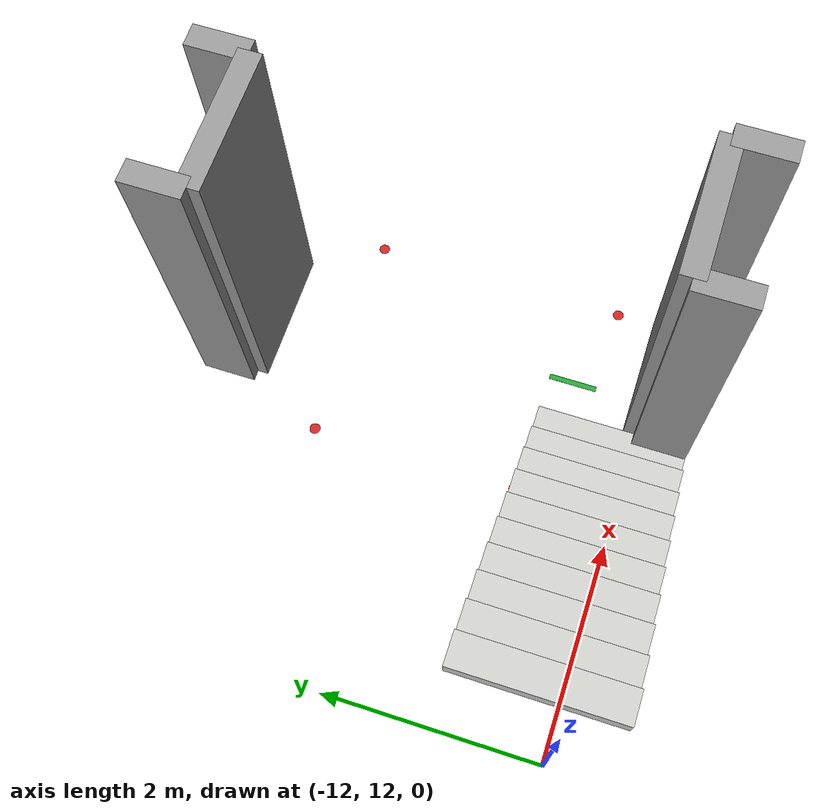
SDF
<sdf version="1.6">
 <world name="square_world">
  <model name="wall33">
   <static>1</static>
   <pose>-8.09 15.85 1.6 0 0 -1.5708</pose>
   <link name="wall_link">
    <inertial><mass>10000</mass></inertial>
    <collision name="wall_collision">
     <geometry><box><size>0.5 0.2 3.2</size></box></geometry>
     <surface><contact><collide_bitmask>2</collide_bitmask></contact></surface>
    </collision>
    <visual name="wall_visual">
     <geometry><box><size>0.5 0.2 3.2</size></box></geometry>
     <material><script><name>Gazebo/Grey</name><uri>__default__</uri></script></material>
    </visual>
   </link>
  </model>
  <model name="wall34">
   <static>1</static>
   <pose>-9.33 15.85 1.6 0 0 -1.5708</pose>
   <link name="wall_link">
    <inertial><mass>10000</mass></inertial>
    <collision name="wall_collision">
     <geometry><box><size>0.5 0.2 3.2</size></box></geometry>
     <surface><contact><collide_bitmask>2</collide_bitmask></contact></surface>
    </collision>
    <visual name="wall_visual">
     <geometry><box><size>0.5 0.2 3.2</size></box></geometry>
     <material><script><name>Gazebo/Grey</name><uri>__default__</uri></script></material>
    </visual>
   </link>
  </model>
  <model name="wall35">
   <static>1</static>
   <pose>-8.71 15.6 1.6 0 -0 0</pose>
   <link name="wall_link">
    <inertial><mass>10000</mass></inertial>
    <collision name="wall_collision">
     <geometry><box><size>1.24 0.2 3.2</size></box></geometry>
     <surface><contact><collide_bitmask>2</collide_bitmask></contact></surface>
    </collision>
    <visual name="wall_visual">
     <geometry><box><size>1.24 0.2 3.2</size></box></geometry>
     <material><script><name>Gazebo/Grey</name><uri>__default__</uri></script></material>
    </visual>
   </link>
  </model>
  <model name="wall42">
   <static>1</static>
   <pose>-7.72 11.7775 1.6 0 0 -1.5708</pose>
   <link name="wall_link">
    <inertial><mass>10000</mass></inertial>
    <collision name="wall_collision">
     <geometry><box><size>0.505 0.2 3.2</size></box></geometry>
     <surface><contact><collide_bitmask>2</collide_bitmask></contact></surface>
    </collision>
    <visual name="wall_visual">
     <geometry><box><size>0.505 0.2 3.2</size></box></geometry>
     <material><script><name>Gazebo/Grey</name><uri>__default__</uri></script></material>
    </visual>
   </link>
  </model>
  <model name="wall43">
   <static>1</static>
   <pose>-8.94 11.7775 1.6 0 0 -1.5708</pose>
   <link name="wall_link">
    <inertial><mass>10000</mass></inertial>
    <collision name="wall_collision">
     <geometry><box><size>0.505 0.2 3.2</size></box></geometry>
     <surface><contact><collide_bitmask>2</collide_bitmask></contact></surface>
    </collision>
    <visual name="wall_visual">
     <geometry><box><size>0.505 0.2 3.2</size></box></geometry>
     <material><script><name>Gazebo/Grey</name><uri>__default__</uri></script></material>
    </visual>
   </link>
  </model>
  <model name="wall44">
   <static>1</static>
   <pose>-8.33 12.03 1.6 0 -0 0</pose>
   <link name="wall_link">
    <inertial><mass>10000</mass></inertial>
    <collision name="wall_collision">
     <geometry><box><size>1.22 0.2 3.2</size></box></geometry>
     <surface><contact><collide_bitmask>2</collide_bitmask></contact></surface>
    </collision>
    <visual name="wall_visual">
     <geometry><box><size>1.22 0.2 3.2</size></box></geometry>
     <material><script><name>Gazebo/Grey</name><uri>__default__</uri></script></material>
    </visual>
   </link>
  </model>
  <model name="Stairs">
   <pose>-10.345 12.23 0 0 -0 0</pose>
   <link name="Stairs_1">
    <visual name="Stairs_1_Visual_0">
     <pose>1.2645 0 0.0935 0 0 -1.5708</pose>
     <geometry><box><size>1.41 0.281 0.187</size></box></geometry>
     <material>
      <script><uri>file://media/materials/scripts/gazebo.material</uri><name>Gazebo/CeilingTiled</name></script>
      <ambient>0.760784 0.662745 0.627451 1</ambient>
     </material>
    </visual>
    <collision name="Stairs_1_Collision_0">
     <geometry><box><size>1.41 0.281 0.187</size></box></geometry>
     <pose>1.2645 0 0.0935 0 0 -1.5708</pose>
    </collision>
    <visual name="Stairs_1_Visual_1">
     <pose>0.9835 0 0.2805 0 0 -1.5708</pose>
     <geometry><box><size>1.41 0.281 0.187</size></box></geometry>
     <material>
      <script><uri>file://media/materials/scripts/gazebo.material</uri><name>Gazebo/CeilingTiled</name></script>
      <ambient>0.760784 0.662745 0.627451 1</ambient>
     </material>
    </visual>
    <collision name="Stairs_1_Collision_1">
     <geometry><box><size>1.41 0.281 0.187</size></box></geometry>
     <pose>0.9835 0 0.2805 0 0 -1.5708</pose>
    </collision>
    <visual name="Stairs_1_Visual_2">
     <pose>0.7025 0 0.4675 0 0 -1.5708</pose>
     <geometry><box><size>1.41 0.281 0.187</size></box></geometry>
     <material>
      <script><uri>file://media/materials/scripts/gazebo.material</uri><name>Gazebo/CeilingTiled</name></script>
      <ambient>0.760784 0.662745 0.627451 1</ambient>
     </material>
    </visual>
    <collision name="Stairs_1_Collision_2">
     <geometry><box><size>1.41 0.281 0.187</size></box></geometry>
     <pose>0.7025 0 0.4675 0 0 -1.5708</pose>
    </collision>
    <visual name="Stairs_1_Visual_3">
     <pose>0.4215 0 0.6545 0 0 -1.5708</pose>
     <geometry><box><size>1.41 0.281 0.187</size></box></geometry>
     <material>
      <script><uri>file://media/materials/scripts/gazebo.material</uri><name>Gazebo/CeilingTiled</name></script>
      <ambient>0.760784 0.662745 0.627451 1</ambient>
     </material>
    </visual>
    <collision name="Stairs_1_Collision_3">
     <geometry><box><size>1.41 0.281 0.187</size></box></geometry>
     <pose>0.4215 0 0.6545 0 0 -1.5708</pose>
    </collision>
    <visual name="Stairs_1_Visual_4">
     <pose>0.1405 0 0.8415 0 0 -1.5708</pose>
     <geometry><box><size>1.41 0.281 0.187</size></box></geometry>
     <material>
      <script><uri>file://media/materials/scripts/gazebo.material</uri><name>Gazebo/CeilingTiled</name></script>
      <ambient>0.760784 0.662745 0.627451 1</ambient>
     </material>
    </visual>
    <collision name="Stairs_1_Collision_4">
     <geometry><box><size>1.41 0.281 0.187</size></box></geometry>
     <pose>0.1405 0 0.8415 0 0 -1.5708</pose>
    </collision>
    <visual name="Stairs_1_Visual_5">
     <pose>-0.1405 0 1.0285 0 0 -1.5708</pose>
     <geometry><box><size>1.41 0.281 0.187</size></box></geometry>
     <material>
      <script><uri>file://media/materials/scripts/gazebo.material</uri><name>Gazebo/CeilingTiled</name></script>
      <ambient>0.760784 0.662745 0.627451 1</ambient>
     </material>
    </visual>
    <collision name="Stairs_1_Collision_5">
     <geometry><box><size>1.41 0.281 0.187</size></box></geometry>
     <pose>-0.1405 0 1.0285 0 0 -1.5708</pose>
    </collision>
    <visual name="Stairs_1_Visual_6">
     <pose>-0.4215 0 1.2155 0 0 -1.5708</pose>
     <geometry><box><size>1.41 0.281 0.187</size></box></geometry>
     <material>
      <script><uri>file://media/materials/scripts/gazebo.material</uri><name>Gazebo/CeilingTiled</name></script>
      <ambient>0.760784 0.662745 0.627451 1</ambient>
     </material>
    </visual>
    <collision name="Stairs_1_Collision_6">
     <geometry><box><size>1.41 0.281 0.187</size></box></geometry>
     <pose>-0.4215 0 1.2155 0 0 -1.5708</pose>
    </collision>
    <visual name="Stairs_1_Visual_7">
     <pose>-0.7025 0 1.4025 0 0 -1.5708</pose>
     <geometry><box><size>1.41 0.281 0.187</size></box></geometry>
     <material>
      <script><uri>file://media/materials/scripts/gazebo.material</uri><name>Gazebo/CeilingTiled</name></script>
      <ambient>0.760784 0.662745 0.627451 1</ambient>
     </material>
    </visual>
    <collision name="Stairs_1_Collision_7">
     <geometry><box><size>1.41 0.281 0.187</size></box></geometry>
     <pose>-0.7025 0 1.4025 0 0 -1.5708</pose>
    </collision>
    <visual name="Stairs_1_Visual_8">
     <pose>-0.9835 0 1.5895 0 0 -1.5708</pose>
     <geometry><box><size>1.41 0.281 0.187</size></box></geometry>
     <material>
      <script><uri>file://media/materials/scripts/gazebo.material</uri><name>Gazebo/CeilingTiled</name></script>
      <ambient>0.760784 0.662745 0.627451 1</ambient>
     </material>
    </visual>
    <collision name="Stairs_1_Collision_8">
     <geometry><box><size>1.41 0.281 0.187</size></box></geometry>
     <pose>-0.9835 0 1.5895 0 0 -1.5708</pose>
    </collision>
    <visual name="Stairs_1_Visual_9">
     <pose>-1.2645 0 1.7765 0 0 -1.5708</pose>
     <geometry><box><size>1.41 0.281 0.187</size></box></geometry>
     <material>
      <script><uri>file://media/materials/scripts/gazebo.material</uri><name>Gazebo/CeilingTiled</name></script>
      <ambient>0.760784 0.662745 0.627451 1</ambient>
     </material>
    </visual>
    <collision name="Stairs_1_Collision_9">
     <geometry><box><size>1.41 0.281 0.187</size></box></geometry>
     <pose>-1.2645 0 1.7765 0 0 -1.5708</pose>
    </collision>
   </link>
   <static>1</static>
  </model>
  <model name="wall578">
   <static>1</static>
   <pose>-8.54 12.7075 0 0 0 -1.5708</pose>
   <link name="wall_link">
    <inertial><mass>10000</mass></inertial>
    <collision name="wall_collision">
     <geometry><box><size>0.455 0.05 0.001</size></box></geometry>
     <surface><contact><collide_bitmask>2</collide_bitmask></contact></surface>
    </collision>
    <visual name="wall_visual">
     <geometry><box><size>0.455 0.05 0.001</size></box></geometry>
     <material><script><name>Gazebo/Green</name><uri>__default__</uri></script></material>
    </visual>
   </link>
  </model>
  <model name="wall848">
   <static>1</static>
   <pose>-10.34 12.575 0 0 0 -1.5708</pose>
   <link name="wall_link">
    <inertial><mass>10000</mass></inertial>
    <collision name="wall_collision">
     <geometry><box><size>0.72 0.05 0.001</size></box></geometry>
     <surface><contact><collide_bitmask>2</collide_bitmask></contact></surface>
    </collision>
    <visual name="wall_visual">
     <geometry><box><size>0.72 0.05 0.001</size></box></geometry>
     <material><script><name>Gazebo/Red</name><uri>__default__</uri></script></material>
    </visual>
   </link>
  </model>
  <model name="wall1198">
   <static>1</static>
   <pose>-7.72 14.88 0 0 -0 0</pose>
   <link name="wall_link">
    <inertial><mass>10000</mass></inertial>
    <collision name="wall_collision">
     <geometry><cylinder><radius>0.05</radius><length>0.001</length></cylinder></geometry>
     <surface><contact><collide_bitmask>2</collide_bitmask></contact></surface>
    </collision>
    <visual name="wall_visual">
     <geometry><cylinder><radius>0.05</radius><length>0.001</length></cylinder></geometry>
     <material><script><name>Gazebo/Red</name><uri>__default__</uri></script></material>
    </visual>
   </link>
  </model>
  <model name="wall1208">
   <static>1</static>
   <pose>-9.72 14.88 0 0 -0 0</pose>
   <link name="wall_link">
    <inertial><mass>10000</mass></inertial>
    <collision name="wall_collision">
     <geometry><cylinder><radius>0.05</radius><length>0.001</length></cylinder></geometry>
     <surface><contact><collide_bitmask>2</collide_bitmask></contact></surface>
    </collision>
    <visual name="wall_visual">
     <geometry><cylinder><radius>0.05</radius><length>0.001</length></cylinder></geometry>
     <material><script><name>Gazebo/Red</name><uri>__default__</uri></script></material>
    </visual>
   </link>
  </model>
  <model name="wall1258">
   <static>1</static>
   <pose>-7.72 12.48 0 0 -0 0</pose>
   <link name="wall_link">
    <inertial><mass>10000</mass></inertial>
    <collision name="wall_collision">
     <geometry><cylinder><radius>0.05</radius><length>0.001</length></cylinder></geometry>
     <surface><contact><collide_bitmask>2</collide_bitmask></contact></surface>
    </collision>
    <visual name="wall_visual">
     <geometry><cylinder><radius>0.05</radius><length>0.001</length></cylinder></geometry>
     <material><script><name>Gazebo/Red</name><uri>__default__</uri></script></material>
    </visual>
   </link>
  </model>
  <model name="wall1268">
   <static>1</static>
   <pose>-9.72 12.935 0 0 -0 0</pose>
   <link name="wall_link">
    <inertial><mass>10000</mass></inertial>
    <collision name="wall_collision">
     <geometry><cylinder><radius>0.05</radius><length>0.001</length></cylinder></geometry>
     <surface><contact><collide_bitmask>2</collide_bitmask></contact></surface>
    </collision>
    <visual name="wall_visual">
     <geometry><cylinder><radius>0.05</radius><length>0.001</length></cylinder></geometry>
     <material><script><name>Gazebo/Red</name><uri>__default__</uri></script></material>
    </visual>
   </link>
  </model>
 </world>
</sdf>
